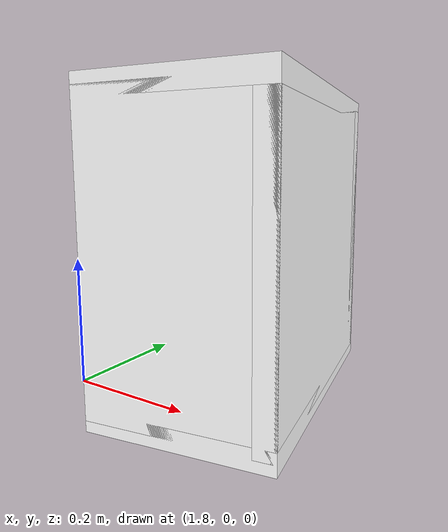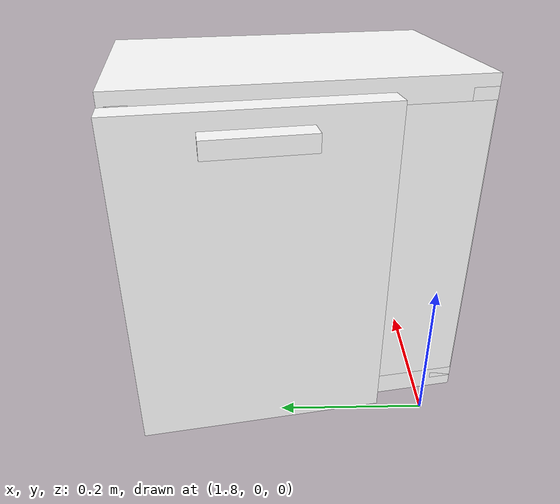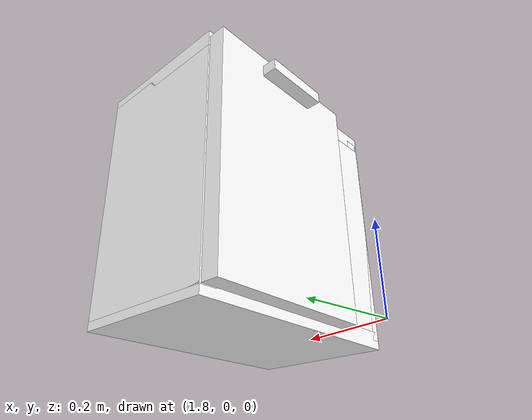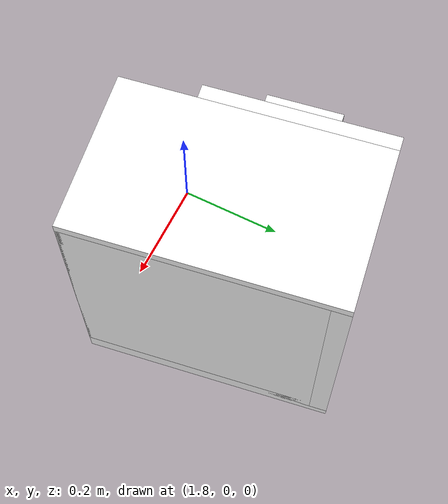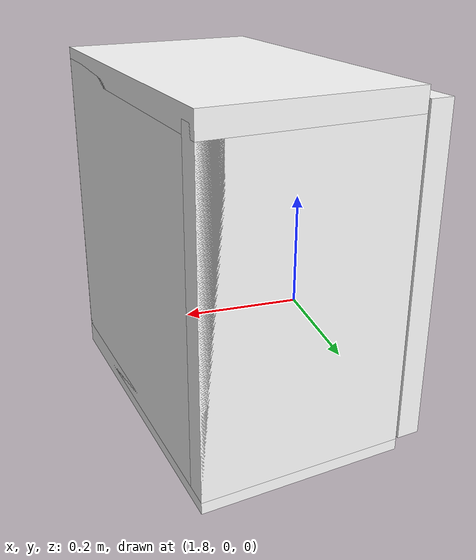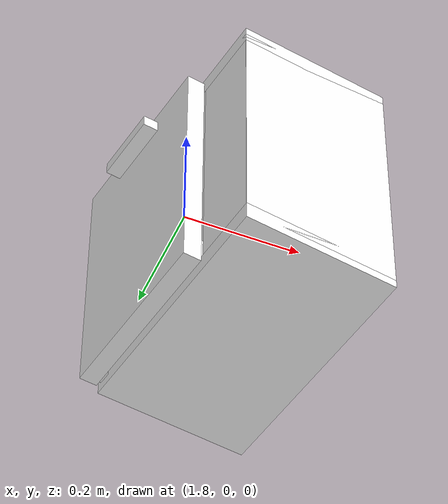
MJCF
<mujoco model="cabinet">
    <compiler angle="radian" eulerseq='zxy' />
    <option gravity = "0 0 0" />
    <option>
        <flag contact = "disable"/>
    </option>
    <statistic	extent="1.0" center="0.0 0.0 0.0"/>
    <visual>
        <map fogstart="3" fogend="5" force="0.1" znear=" 0.100000 " zfar=" 12.000000 "/>
    </visual>
    <size njmax="500" nconmax="100" />
    <actuator>
        <velocity joint="bottom_left_hinge" name="viva_revolution" kv='10'></velocity>
    </actuator>
    <asset>
        <texture builtin="flat" name="tabletex" height="32" width="32" rgb1="1 1 1" type="cube"></texture>
        <texture builtin="flat" name="objtex" height="32" width="32" rgb1="1 1 1" type="cube"></texture>
        <texture builtin="flat" name="handletex" height="32" width="32" rgb1="1 1 1" type="cube"></texture>
        <texture builtin="flat" name="wallpaper" height="32" width="32" rgb1="1 1 1" type="cube"></texture>
        <texture builtin="flat" name="kp" height="32" width="32" rgb1="1 1 1" type="cube"></texture>
        <material name="geomTable" shininess="0.03" specular="0.75" texture="tabletex"></material>
        <material name="geomObj" shininess="0.03" specular="0.75" texture="objtex"></material>
        <material name="geomHandle" shininess="0.03" specular="0.75" texture="handletex"></material>
        <material name="bg" shininess="0.03" specular="0.75" texture="wallpaper"></material>
        <material name="geomKeypad" shininess="0.03" specular="0.75" texture="kp"></material>
    </asset>
    <worldbody>
        <body name="cabinet_bottom" pos= " 1.984505 0.189367 -0.016482 "  quat= " -0.080296 0.000000 0.000000 0.996771" >
            <inertial pos="0 0 0" mass="1" diaginertia="1 1 1" />
            <geom size= " 0.144171 0.235884 0.016598 "  type="box" material="geomObj" name="b"/>
            <body name="cabinet_left" pos= " 0.000000 -0.219286 0.231904 " >
                <inertial pos="0 0 0" mass="1" diaginertia="1 1 1" />
                <geom size= " 0.144171 0.016598 0.231904 "  type="box" material="geomObj" name="c" />
            </body>
            <body name="cabinet_right" pos= " 0.000000 0.219286 0.231904 " >
                <inertial pos="0 0 0" mass="1" diaginertia="1 1 1" />
                <geom size= " 0.144171 0.016598 0.231904 "  type="box" material="geomObj" name="d" />
            </body>
            <body name="cabinet_top" pos= " 0.000000 0.000000 0.463807 " >
                <inertial pos="0 0 0" mass="1" diaginertia="1 1 1" />
                <geom size= " 0.144171 0.235884 0.016598 "  type="box" material="geomObj" name="e"/>
            </body>
            <body name="cabinet_back" pos= " -0.127573 0.000000 0.231904 "  >
                <inertial pos="0 0 0" mass="1" diaginertia="1 1 1" />
                <geom size= " 0.016598 0.235884 0.231904 "  type="box" material="geomObj" name="f" />
            </body>
            <body name="cabinet_keypad" pos= " 0.016598 0.168761 0.231904 " >
                <inertial pos="0 0 0" mass="1" diaginertia="1 1 1" />
                <geom size= " 0.127573 0.066123 0.215306 "  type="box" material="geomKeypad" name="keypizzlemynizzle" />
            </body>
            <body name="cabinet_left_hinge" pos= " 0.144171 -0.066123 0.000000 " >
                <inertial pos= " 0.020000 0.000000 0.231904 "  mass="1" diaginertia="1 1 1" />
                <joint name="bottom_left_hinge" type="hinge" pos="0 0 0" axis="0 1 0" limited="true" range= "0 2.3"  />
                <geom size= " 0.016598 0.169761 0.231904 "  pos= " 0.020000 0.000000 0.231904 "  type="box" material="geomObj" name="g"/>
                <body name="handle_link" pos= " 0.036043 0.000000 0.430612 " >
                    <inertial pos="0 0 0" mass="1" diaginertia="1 1 1" />
                    <geom size= " 0.028645 0.066123 0.011361 "  type="box" material="geomHandle" name="h"/>
                </body>
            </body>
        </body>
        <body name="external_camera_body_0" pos="0.0 0 0.00">
            <camera euler="-1.57 1.57 0.0" fovy=" 54.280851 " name="external_camera_0" pos="0.0 0 0"></camera>
            <inertial pos= " 0.00 0.0 0.000000 " mass="1" diaginertia="1 1 1" />
            <joint name="cam_j" pos="0.0 0 0" axis = "1 0 0" type="free" />
        </body>
    </worldbody>
</mujoco>
